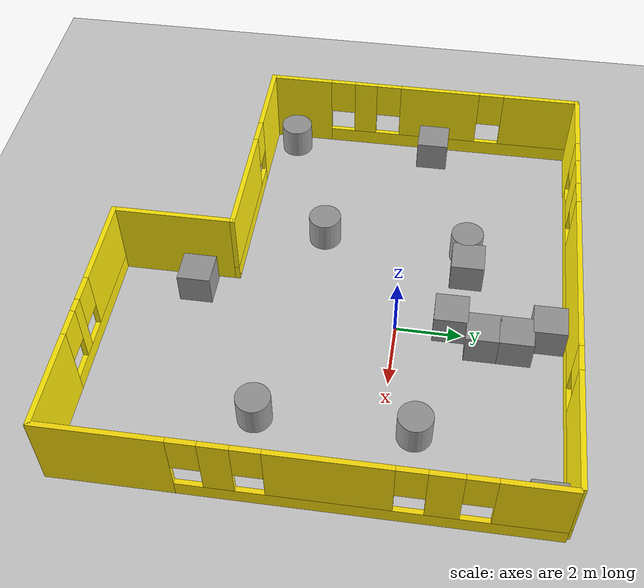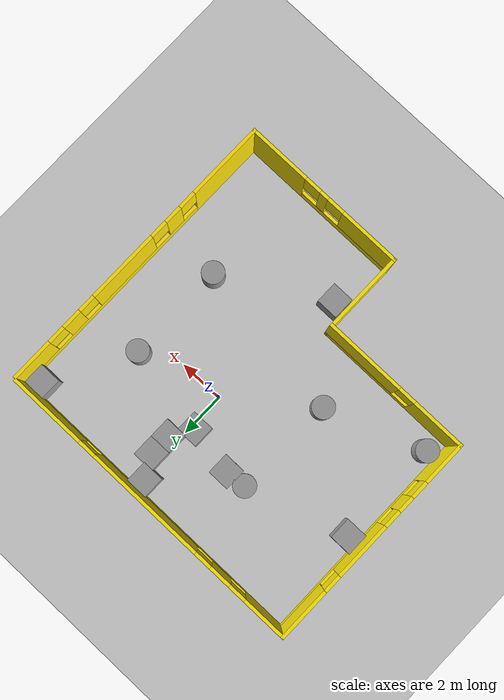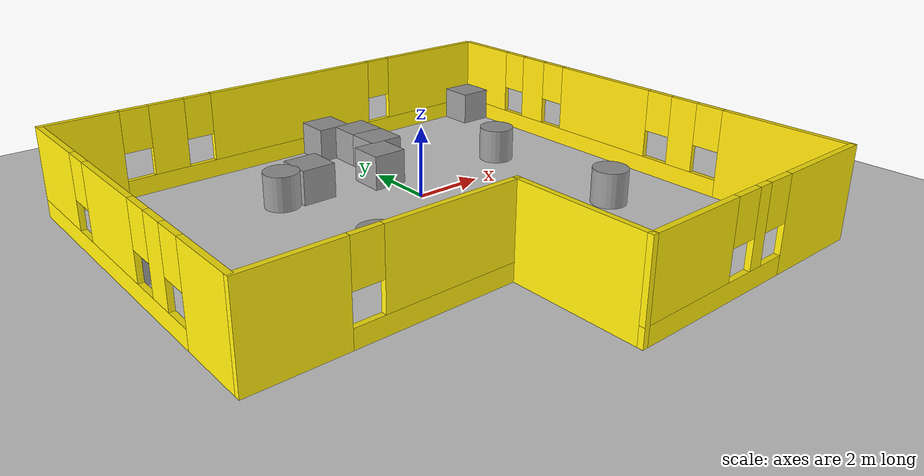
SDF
<sdf version="1.7">
 <world name="default">
  <light name="sun" type="directional">
   <pose>0 0 10 0 -0 0</pose>
   <diffuse>0.8 0.8 0.8 1</diffuse>
   <specular>0.2 0.2 0.2 1</specular>
   <attenuation>
    <range>1000</range>
    <constant>0.9</constant>
    <linear>0.01</linear>
    <quadratic>0.001</quadratic>
   </attenuation>
   <direction>-0.5 0.1 -0.9</direction>
   <spot><inner_angle>0</inner_angle><outer_angle>0</outer_angle><falloff>0</falloff></spot>
  </light>
  <model name="ground_plane">
   <static>1</static>
   <link name="link">
    <collision name="collision">
     <geometry><plane><normal>0 0 1</normal><size>100 100</size></plane></geometry>
     <surface>
      <contact><collide_bitmask>65535</collide_bitmask></contact>
      <friction><ode><mu>100</mu><mu2>50</mu2></ode></friction>
     </surface>
    </collision>
    <visual name="visual">
     <cast_shadows>0</cast_shadows>
     <geometry><plane><normal>0 0 1</normal><size>100 100</size></plane></geometry>
     <material>
      <script><uri>file://media/materials/scripts/gazebo.material</uri><name>Gazebo/Grey</name></script>
     </material>
    </visual>
   </link>
  </model>
  <gravity>0 0 -9.8</gravity>
  <magnetic_field>6e-06 2.3e-05 -4.2e-05</magnetic_field>
  <atmosphere type="adiabatic"/>
  <physics type="ode">
   <max_step_size>0.001</max_step_size>
   <real_time_factor>1</real_time_factor>
   <real_time_update_rate>1000</real_time_update_rate>
  </physics>
  <scene><ambient>0.4 0.4 0.4 1</ambient><background>0.7 0.7 0.7 1</background><shadows>1</shadows></scene>
  <audio><device>default</device></audio>
  <spherical_coordinates>
   <surface_model>EARTH_WGS84</surface_model>
   <latitude_deg>0</latitude_deg>
   <longitude_deg>0</longitude_deg>
   <elevation>0</elevation>
   <heading_deg>0</heading_deg>
  </spherical_coordinates>
  <model name="room">
   <pose>-1.03252 -1.80025 0 0 -0 0</pose>
   <link name="Wall_14">
    <pose>3.425 -6.85 0 0 -0 3.14159</pose>
    <visual name="Wall_14_Visual_0">
     <pose>-2.42261 0 1.25 0 -0 0</pose>
     <geometry><box><size>2.90478 0.15 2.5</size></box></geometry>
     <material>
      <script><uri>file://media/materials/scripts/gazebo.material</uri><name>Gazebo/Grey</name></script>
      <ambient>1 0.917647 0.027451 1</ambient>
     </material>
     <meta><layer>0</layer></meta>
    </visual>
    <collision name="Wall_14_Collision_0">
     <geometry><box><size>2.90478 0.15 2.5</size></box></geometry>
     <pose>-2.42261 0 1.25 0 -0 0</pose>
    </collision>
    <visual name="Wall_14_Visual_1">
     <pose>1.45239 0 0.25 0 -0 0</pose>
     <geometry><box><size>4.84522 0.15 0.5</size></box></geometry>
     <material>
      <script><uri>file://media/materials/scripts/gazebo.material</uri><name>Gazebo/Grey</name></script>
      <ambient>1 0.917647 0.027451 1</ambient>
     </material>
     <meta><layer>0</layer></meta>
    </visual>
    <collision name="Wall_14_Collision_1">
     <geometry><box><size>4.84522 0.15 0.5</size></box></geometry>
     <pose>1.45239 0 0.25 0 -0 0</pose>
    </collision>
    <visual name="Wall_14_Visual_2">
     <pose>0.038129 0 1.5 0 -0 0</pose>
     <geometry><box><size>0.4167 0.15 2</size></box></geometry>
     <material>
      <script><uri>file://media/materials/scripts/gazebo.material</uri><name>Gazebo/Grey</name></script>
      <ambient>1 0.917647 0.027451 1</ambient>
     </material>
     <meta><layer>0</layer></meta>
    </visual>
    <collision name="Wall_14_Collision_2">
     <geometry><box><size>0.4167 0.15 2</size></box></geometry>
     <pose>0.038129 0 1.5 0 -0 0</pose>
    </collision>
    <visual name="Wall_14_Visual_3">
     <pose>2.46074 0 1.5 0 -0 0</pose>
     <geometry><box><size>2.82852 0.15 2</size></box></geometry>
     <material>
      <script><uri>file://media/materials/scripts/gazebo.material</uri><name>Gazebo/Grey</name></script>
      <ambient>1 0.917647 0.027451 1</ambient>
     </material>
     <meta><layer>0</layer></meta>
    </visual>
    <collision name="Wall_14_Collision_3">
     <geometry><box><size>2.82852 0.15 2</size></box></geometry>
     <pose>2.46074 0 1.5 0 -0 0</pose>
    </collision>
    <visual name="Wall_14_Visual_4">
     <pose>-0.570221 0 1.9 0 -0 0</pose>
     <geometry><box><size>0.8 0.15 1.2</size></box></geometry>
     <material>
      <script><uri>file://media/materials/scripts/gazebo.material</uri><name>Gazebo/Grey</name></script>
      <ambient>1 0.917647 0.027451 1</ambient>
     </material>
     <meta><layer>0</layer></meta>
    </visual>
    <collision name="Wall_14_Collision_4">
     <geometry><box><size>0.8 0.15 1.2</size></box></geometry>
     <pose>-0.570221 0 1.9 0 -0 0</pose>
    </collision>
    <visual name="Wall_14_Visual_5">
     <pose>0.646479 0 1.9 0 -0 0</pose>
     <geometry><box><size>0.8 0.15 1.2</size></box></geometry>
     <material>
      <script><uri>file://media/materials/scripts/gazebo.material</uri><name>Gazebo/Grey</name></script>
      <ambient>1 0.917647 0.027451 1</ambient>
     </material>
     <meta><layer>0</layer></meta>
    </visual>
    <collision name="Wall_14_Collision_5">
     <geometry><box><size>0.8 0.15 1.2</size></box></geometry>
     <pose>0.646479 0 1.9 0 -0 0</pose>
    </collision>
   </link>
   <link name="Wall_15">
    <collision name="Wall_15_Collision">
     <geometry><box><size>3.75 0.15 2.5</size></box></geometry>
     <pose>0 0 1.25 0 -0 0</pose>
    </collision>
    <visual name="Wall_15_Visual">
     <pose>0 0 1.25 0 -0 0</pose>
     <geometry><box><size>3.75 0.15 2.5</size></box></geometry>
     <material>
      <script><uri>file://media/materials/scripts/gazebo.material</uri><name>Gazebo/Grey</name></script>
      <ambient>1 0.917647 0.027451 1</ambient>
     </material>
     <meta><layer>0</layer></meta>
    </visual>
    <pose>-0.375 -5.05 0 0 -0 1.5708</pose>
   </link>
   <link name="Wall_17">
    <pose>-7.225 1.8 0 0 -0 1.5708</pose>
    <visual name="Wall_17_Visual_0">
     <pose>-4.10475 0 1.25 0 -0 0</pose>
     <geometry><box><size>2.04049 0.15 2.5</size></box></geometry>
     <material>
      <script><uri>file://media/materials/scripts/gazebo.material</uri><name>Gazebo/Grey</name></script>
      <ambient>1 0.917647 0.027451 1</ambient>
     </material>
     <meta><layer>0</layer></meta>
    </visual>
    <collision name="Wall_17_Collision_0">
     <geometry><box><size>2.04049 0.15 2.5</size></box></geometry>
     <pose>-4.10475 0 1.25 0 -0 0</pose>
    </collision>
    <visual name="Wall_17_Visual_1">
     <pose>1.02025 0 0.25 0 -0 0</pose>
     <geometry><box><size>8.20951 0.15 0.5</size></box></geometry>
     <material>
      <script><uri>file://media/materials/scripts/gazebo.material</uri><name>Gazebo/Grey</name></script>
      <ambient>1 0.917647 0.027451 1</ambient>
     </material>
     <meta><layer>0</layer></meta>
    </visual>
    <collision name="Wall_17_Collision_1">
     <geometry><box><size>8.20951 0.15 0.5</size></box></geometry>
     <pose>1.02025 0 0.25 0 -0 0</pose>
    </collision>
    <visual name="Wall_17_Visual_2">
     <pose>-1.91393 0 1.5 0 -0 0</pose>
     <geometry><box><size>0.741153 0.15 2</size></box></geometry>
     <material>
      <script><uri>file://media/materials/scripts/gazebo.material</uri><name>Gazebo/Grey</name></script>
      <ambient>1 0.917647 0.027451 1</ambient>
     </material>
     <meta><layer>0</layer></meta>
    </visual>
    <collision name="Wall_17_Collision_2">
     <geometry><box><size>0.741153 0.15 2</size></box></geometry>
     <pose>-1.91393 0 1.5 0 -0 0</pose>
    </collision>
    <visual name="Wall_17_Visual_3">
     <pose>0.560023 0 1.5 0 -0 0</pose>
     <geometry><box><size>2.60676 0.15 2</size></box></geometry>
     <material>
      <script><uri>file://media/materials/scripts/gazebo.material</uri><name>Gazebo/Grey</name></script>
      <ambient>1 0.917647 0.027451 1</ambient>
     </material>
     <meta><layer>0</layer></meta>
    </visual>
    <collision name="Wall_17_Collision_3">
     <geometry><box><size>2.60676 0.15 2</size></box></geometry>
     <pose>0.560023 0 1.5 0 -0 0</pose>
    </collision>
    <visual name="Wall_17_Visual_4">
     <pose>3.8942 0 1.5 0 -0 0</pose>
     <geometry><box><size>2.4616 0.15 2</size></box></geometry>
     <material>
      <script><uri>file://media/materials/scripts/gazebo.material</uri><name>Gazebo/Grey</name></script>
      <ambient>1 0.917647 0.027451 1</ambient>
     </material>
     <meta><layer>0</layer></meta>
    </visual>
    <collision name="Wall_17_Collision_4">
     <geometry><box><size>2.4616 0.15 2</size></box></geometry>
     <pose>3.8942 0 1.5 0 -0 0</pose>
    </collision>
    <visual name="Wall_17_Visual_5">
     <pose>-2.68451 0 1.9 0 -0 0</pose>
     <geometry><box><size>0.8 0.15 1.2</size></box></geometry>
     <material>
      <script><uri>file://media/materials/scripts/gazebo.material</uri><name>Gazebo/Grey</name></script>
      <ambient>1 0.917647 0.027451 1</ambient>
     </material>
     <meta><layer>0</layer></meta>
    </visual>
    <collision name="Wall_17_Collision_5">
     <geometry><box><size>0.8 0.15 1.2</size></box></geometry>
     <pose>-2.68451 0 1.9 0 -0 0</pose>
    </collision>
    <visual name="Wall_17_Visual_6">
     <pose>-1.14336 0 1.9 0 -0 0</pose>
     <geometry><box><size>0.8 0.15 1.2</size></box></geometry>
     <material>
      <script><uri>file://media/materials/scripts/gazebo.material</uri><name>Gazebo/Grey</name></script>
      <ambient>1 0.917647 0.027451 1</ambient>
     </material>
     <meta><layer>0</layer></meta>
    </visual>
    <collision name="Wall_17_Collision_6">
     <geometry><box><size>0.8 0.15 1.2</size></box></geometry>
     <pose>-1.14336 0 1.9 0 -0 0</pose>
    </collision>
    <visual name="Wall_17_Visual_7">
     <pose>2.2634 0 1.9 0 -0 0</pose>
     <geometry><box><size>0.8 0.15 1.2</size></box></geometry>
     <material>
      <script><uri>file://media/materials/scripts/gazebo.material</uri><name>Gazebo/Grey</name></script>
      <ambient>1 0.917647 0.027451 1</ambient>
     </material>
     <meta><layer>0</layer></meta>
    </visual>
    <collision name="Wall_17_Collision_7">
     <geometry><box><size>0.8 0.15 1.2</size></box></geometry>
     <pose>2.2634 0 1.9 0 -0 0</pose>
    </collision>
   </link>
   <link name="Wall_19">
    <pose>-0.05 6.85 0 0 -0 0</pose>
    <visual name="Wall_19_Visual_0">
     <pose>-6.20279 0 1.25 0 -0 0</pose>
     <geometry><box><size>2.09442 0.15 2.5</size></box></geometry>
     <material>
      <script><uri>file://media/materials/scripts/gazebo.material</uri><name>Gazebo/Grey</name></script>
      <ambient>1 0.917647 0.027451 1</ambient>
     </material>
     <meta><layer>0</layer></meta>
    </visual>
    <collision name="Wall_19_Collision_0">
     <geometry><box><size>2.09442 0.15 2.5</size></box></geometry>
     <pose>-6.20279 0 1.25 0 -0 0</pose>
    </collision>
    <visual name="Wall_19_Visual_1">
     <pose>1.04721 0 0.25 0 -0 0</pose>
     <geometry><box><size>12.4056 0.15 0.5</size></box></geometry>
     <material>
      <script><uri>file://media/materials/scripts/gazebo.material</uri><name>Gazebo/Grey</name></script>
      <ambient>1 0.917647 0.027451 1</ambient>
     </material>
     <meta><layer>0</layer></meta>
    </visual>
    <collision name="Wall_19_Collision_1">
     <geometry><box><size>12.4056 0.15 0.5</size></box></geometry>
     <pose>1.04721 0 0.25 0 -0 0</pose>
    </collision>
    <visual name="Wall_19_Visual_2">
     <pose>-3.84305 0 1.5 0 -0 0</pose>
     <geometry><box><size>1.02505 0.15 2</size></box></geometry>
     <material>
      <script><uri>file://media/materials/scripts/gazebo.material</uri><name>Gazebo/Grey</name></script>
      <ambient>1 0.917647 0.027451 1</ambient>
     </material>
     <meta><layer>0</layer></meta>
    </visual>
    <collision name="Wall_19_Collision_2">
     <geometry><box><size>1.02505 0.15 2</size></box></geometry>
     <pose>-3.84305 0 1.5 0 -0 0</pose>
    </collision>
    <visual name="Wall_19_Visual_3">
     <pose>0.192337 0 1.5 0 -0 0</pose>
     <geometry><box><size>5.44573 0.15 2</size></box></geometry>
     <material>
      <script><uri>file://media/materials/scripts/gazebo.material</uri><name>Gazebo/Grey</name></script>
      <ambient>1 0.917647 0.027451 1</ambient>
     </material>
     <meta><layer>0</layer></meta>
    </visual>
    <collision name="Wall_19_Collision_3">
     <geometry><box><size>5.44573 0.15 2</size></box></geometry>
     <pose>0.192337 0 1.5 0 -0 0</pose>
    </collision>
    <visual name="Wall_19_Visual_4">
     <pose>5.4826 0 1.5 0 -0 0</pose>
     <geometry><box><size>3.5348 0.15 2</size></box></geometry>
     <material>
      <script><uri>file://media/materials/scripts/gazebo.material</uri><name>Gazebo/Grey</name></script>
      <ambient>1 0.917647 0.027451 1</ambient>
     </material>
     <meta><layer>0</layer></meta>
    </visual>
    <collision name="Wall_19_Collision_4">
     <geometry><box><size>3.5348 0.15 2</size></box></geometry>
     <pose>5.4826 0 1.5 0 -0 0</pose>
    </collision>
    <visual name="Wall_19_Visual_5">
     <pose>-4.75558 0 1.9 0 -0 0</pose>
     <geometry><box><size>0.8 0.15 1.2</size></box></geometry>
     <material>
      <script><uri>file://media/materials/scripts/gazebo.material</uri><name>Gazebo/Grey</name></script>
      <ambient>1 0.917647 0.027451 1</ambient>
     </material>
     <meta><layer>0</layer></meta>
    </visual>
    <collision name="Wall_19_Collision_5">
     <geometry><box><size>0.8 0.15 1.2</size></box></geometry>
     <pose>-4.75558 0 1.9 0 -0 0</pose>
    </collision>
    <visual name="Wall_19_Visual_6">
     <pose>-2.93053 0 1.9 0 -0 0</pose>
     <geometry><box><size>0.8 0.15 1.2</size></box></geometry>
     <material>
      <script><uri>file://media/materials/scripts/gazebo.material</uri><name>Gazebo/Grey</name></script>
      <ambient>1 0.917647 0.027451 1</ambient>
     </material>
     <meta><layer>0</layer></meta>
    </visual>
    <collision name="Wall_19_Collision_6">
     <geometry><box><size>0.8 0.15 1.2</size></box></geometry>
     <pose>-2.93053 0 1.9 0 -0 0</pose>
    </collision>
    <visual name="Wall_19_Visual_7">
     <pose>3.3152 0 1.9 0 -0 0</pose>
     <geometry><box><size>0.8 0.15 1.2</size></box></geometry>
     <material>
      <script><uri>file://media/materials/scripts/gazebo.material</uri><name>Gazebo/Grey</name></script>
      <ambient>1 0.917647 0.027451 1</ambient>
     </material>
     <meta><layer>0</layer></meta>
    </visual>
    <collision name="Wall_19_Collision_7">
     <geometry><box><size>0.8 0.15 1.2</size></box></geometry>
     <pose>3.3152 0 1.9 0 -0 0</pose>
    </collision>
   </link>
   <link name="Wall_23">
    <pose>7.225 -0.049999 0 0 -0 1.5708</pose>
    <visual name="Wall_23_Visual_0">
     <pose>-5.08895 0 1.25 0 -0 0</pose>
     <geometry><box><size>3.5721 0.15 2.5</size></box></geometry>
     <material>
      <script><uri>file://media/materials/scripts/gazebo.material</uri><name>Gazebo/Grey</name></script>
      <ambient>1 0.886275 0.0313726 1</ambient>
     </material>
     <meta><layer>0</layer></meta>
    </visual>
    <collision name="Wall_23_Collision_0">
     <geometry><box><size>3.5721 0.15 2.5</size></box></geometry>
     <pose>-5.08895 0 1.25 0 -0 0</pose>
    </collision>
    <visual name="Wall_23_Visual_1">
     <pose>1.78605 0 0.25 0 -0 0</pose>
     <geometry><box><size>10.1779 0.15 0.5</size></box></geometry>
     <material>
      <script><uri>file://media/materials/scripts/gazebo.material</uri><name>Gazebo/Grey</name></script>
      <ambient>1 0.886275 0.0313726 1</ambient>
     </material>
     <meta><layer>0</layer></meta>
    </visual>
    <collision name="Wall_23_Collision_1">
     <geometry><box><size>10.1779 0.15 0.5</size></box></geometry>
     <pose>1.78605 0 0.25 0 -0 0</pose>
    </collision>
    <visual name="Wall_23_Visual_2">
     <pose>-2.09177 0 1.5 0 -0 0</pose>
     <geometry><box><size>0.822267 0.15 2</size></box></geometry>
     <material>
      <script><uri>file://media/materials/scripts/gazebo.material</uri><name>Gazebo/Grey</name></script>
      <ambient>1 0.886275 0.0313726 1</ambient>
     </material>
     <meta><layer>0</layer></meta>
    </visual>
    <collision name="Wall_23_Collision_2">
     <geometry><box><size>0.822267 0.15 2</size></box></geometry>
     <pose>-2.09177 0 1.5 0 -0 0</pose>
    </collision>
    <visual name="Wall_23_Visual_3">
     <pose>0.767478 0 1.5 0 -0 0</pose>
     <geometry><box><size>3.29622 0.15 2</size></box></geometry>
     <material>
      <script><uri>file://media/materials/scripts/gazebo.material</uri><name>Gazebo/Grey</name></script>
      <ambient>1 0.886275 0.0313726 1</ambient>
     </material>
     <meta><layer>0</layer></meta>
    </visual>
    <collision name="Wall_23_Collision_3">
     <geometry><box><size>3.29622 0.15 2</size></box></geometry>
     <pose>0.767478 0 1.5 0 -0 0</pose>
    </collision>
    <visual name="Wall_23_Visual_4">
     <pose>3.66728 0 1.5 0 -0 0</pose>
     <geometry><box><size>0.90338 0.15 2</size></box></geometry>
     <material>
      <script><uri>file://media/materials/scripts/gazebo.material</uri><name>Gazebo/Grey</name></script>
      <ambient>1 0.886275 0.0313726 1</ambient>
     </material>
     <meta><layer>0</layer></meta>
    </visual>
    <collision name="Wall_23_Collision_4">
     <geometry><box><size>0.90338 0.15 2</size></box></geometry>
     <pose>3.66728 0 1.5 0 -0 0</pose>
    </collision>
    <visual name="Wall_23_Visual_5">
     <pose>5.89698 0 1.5 0 -0 0</pose>
     <geometry><box><size>1.95603 0.15 2</size></box></geometry>
     <material>
      <script><uri>file://media/materials/scripts/gazebo.material</uri><name>Gazebo/Grey</name></script>
      <ambient>1 0.886275 0.0313726 1</ambient>
     </material>
     <meta><layer>0</layer></meta>
    </visual>
    <collision name="Wall_23_Collision_5">
     <geometry><box><size>1.95603 0.15 2</size></box></geometry>
     <pose>5.89698 0 1.5 0 -0 0</pose>
    </collision>
    <visual name="Wall_23_Visual_6">
     <pose>-2.9029 0 1.9 0 -0 0</pose>
     <geometry><box><size>0.8 0.15 1.2</size></box></geometry>
     <material>
      <script><uri>file://media/materials/scripts/gazebo.material</uri><name>Gazebo/Grey</name></script>
      <ambient>1 0.886275 0.0313726 1</ambient>
     </material>
     <meta><layer>0</layer></meta>
    </visual>
    <collision name="Wall_23_Collision_6">
     <geometry><box><size>0.8 0.15 1.2</size></box></geometry>
     <pose>-2.9029 0 1.9 0 -0 0</pose>
    </collision>
    <visual name="Wall_23_Visual_7">
     <pose>-1.28063 0 1.9 0 -0 0</pose>
     <geometry><box><size>0.8 0.15 1.2</size></box></geometry>
     <material>
      <script><uri>file://media/materials/scripts/gazebo.material</uri><name>Gazebo/Grey</name></script>
      <ambient>1 0.886275 0.0313726 1</ambient>
     </material>
     <meta><layer>0</layer></meta>
    </visual>
    <collision name="Wall_23_Collision_7">
     <geometry><box><size>0.8 0.15 1.2</size></box></geometry>
     <pose>-1.28063 0 1.9 0 -0 0</pose>
    </collision>
    <visual name="Wall_23_Visual_8">
     <pose>2.81559 0 1.9 0 -0 0</pose>
     <geometry><box><size>0.8 0.15 1.2</size></box></geometry>
     <material>
      <script><uri>file://media/materials/scripts/gazebo.material</uri><name>Gazebo/Grey</name></script>
      <ambient>1 0.886275 0.0313726 1</ambient>
     </material>
     <meta><layer>0</layer></meta>
    </visual>
    <collision name="Wall_23_Collision_8">
     <geometry><box><size>0.8 0.15 1.2</size></box></geometry>
     <pose>2.81559 0 1.9 0 -0 0</pose>
    </collision>
    <visual name="Wall_23_Visual_9">
     <pose>4.51897 0 1.9 0 -0 0</pose>
     <geometry><box><size>0.8 0.15 1.2</size></box></geometry>
     <material>
      <script><uri>file://media/materials/scripts/gazebo.material</uri><name>Gazebo/Grey</name></script>
      <ambient>1 0.886275 0.0313726 1</ambient>
     </material>
     <meta><layer>0</layer></meta>
    </visual>
    <collision name="Wall_23_Collision_9">
     <geometry><box><size>0.8 0.15 1.2</size></box></geometry>
     <pose>4.51897 0 1.9 0 -0 0</pose>
    </collision>
   </link>
   <link name="Wall_27">
    <pose>-3.8 -3.25 0 0 -0 0</pose>
    <visual name="Wall_27_Visual_0">
     <pose>-2.25 0 1.25 0 -0 0</pose>
     <geometry><box><size>2.49999 0.15 2.5</size></box></geometry>
     <material>
      <script><uri>file://media/materials/scripts/gazebo.material</uri><name>Gazebo/Grey</name></script>
      <ambient>1 0.921569 0.0431373 1</ambient>
     </material>
     <meta><layer>0</layer></meta>
    </visual>
    <collision name="Wall_27_Collision_0">
     <geometry><box><size>2.49999 0.15 2.5</size></box></geometry>
     <pose>-2.25 0 1.25 0 -0 0</pose>
    </collision>
    <visual name="Wall_27_Visual_1">
     <pose>1.25 0 0.25 0 -0 0</pose>
     <geometry><box><size>4.50001 0.15 0.5</size></box></geometry>
     <material>
      <script><uri>file://media/materials/scripts/gazebo.material</uri><name>Gazebo/Grey</name></script>
      <ambient>1 0.921569 0.0431373 1</ambient>
     </material>
     <meta><layer>0</layer></meta>
    </visual>
    <collision name="Wall_27_Collision_1">
     <geometry><box><size>4.50001 0.15 0.5</size></box></geometry>
     <pose>1.25 0 0.25 0 -0 0</pose>
    </collision>
    <visual name="Wall_27_Visual_2">
     <pose>1.65 0 1.5 0 -0 0</pose>
     <geometry><box><size>3.70001 0.15 2</size></box></geometry>
     <material>
      <script><uri>file://media/materials/scripts/gazebo.material</uri><name>Gazebo/Grey</name></script>
      <ambient>1 0.921569 0.0431373 1</ambient>
     </material>
     <meta><layer>0</layer></meta>
    </visual>
    <collision name="Wall_27_Collision_2">
     <geometry><box><size>3.70001 0.15 2</size></box></geometry>
     <pose>1.65 0 1.5 0 -0 0</pose>
    </collision>
    <visual name="Wall_27_Visual_3">
     <pose>-0.600009 0 1.9 0 -0 0</pose>
     <geometry><box><size>0.8 0.15 1.2</size></box></geometry>
     <material>
      <script><uri>file://media/materials/scripts/gazebo.material</uri><name>Gazebo/Grey</name></script>
      <ambient>1 0.921569 0.0431373 1</ambient>
     </material>
     <meta><layer>0</layer></meta>
    </visual>
    <collision name="Wall_27_Collision_3">
     <geometry><box><size>0.8 0.15 1.2</size></box></geometry>
     <pose>-0.600009 0 1.9 0 -0 0</pose>
    </collision>
   </link>
   <static>1</static>
  </model>
  <model name="unit_box">
   <pose>5.63445 4.49394 0.5 0 -0 0</pose>
   <link name="link">
    <inertial>
     <mass>1</mass>
     <inertia>
      <ixx>0.166667</ixx>
      <ixy>0</ixy>
      <ixz>0</ixz>
      <iyy>0.166667</iyy>
      <iyz>0</iyz>
      <izz>0.166667</izz>
     </inertia>
    </inertial>
    <collision name="collision"><geometry><box><size>1 1 1</size></box></geometry></collision>
    <visual name="visual">
     <geometry><box><size>1 1 1</size></box></geometry>
     <material>
      <script><name>Gazebo/Grey</name><uri>file://media/materials/scripts/gazebo.material</uri></script>
     </material>
    </visual>
   </link>
  </model>
  <model name="unit_cylinder">
   <pose>3.66665 -3.54119 0.5 0 -0 0</pose>
   <link name="link">
    <inertial>
     <mass>1</mass>
     <inertia><ixx>0.145833</ixx><ixy>0</ixy><ixz>0</ixz><iyy>0.145833</iyy><iyz>0</iyz><izz>0.125</izz></inertia>
    </inertial>
    <collision name="collision">
     <geometry><cylinder><radius>0.5</radius><length>1</length></cylinder></geometry>
    </collision>
    <visual name="visual">
     <geometry><cylinder><radius>0.5</radius><length>1</length></cylinder></geometry>
     <material>
      <script><name>Gazebo/Grey</name><uri>file://media/materials/scripts/gazebo.material</uri></script>
     </material>
    </visual>
   </link>
  </model>
  <model name="unit_cylinder_0">
   <pose>3.66665 0.907837 0.5 0 -0 0</pose>
   <link name="link">
    <inertial>
     <mass>1</mass>
     <inertia><ixx>0.145833</ixx><ixy>0</ixy><ixz>0</ixz><iyy>0.145833</iyy><iyz>0</iyz><izz>0.125</izz></inertia>
    </inertial>
    <collision name="collision">
     <geometry><cylinder><radius>0.5</radius><length>1</length></cylinder></geometry>
    </collision>
    <visual name="visual">
     <geometry><cylinder><radius>0.5</radius><length>1</length></cylinder></geometry>
     <material>
      <script><name>Gazebo/Grey</name><uri>file://media/materials/scripts/gazebo.material</uri></script>
     </material>
    </visual>
   </link>
  </model>
  <model name="unit_cylinder_1">
   <pose>-3.26023 1.89352 0.5 0 -0 0</pose>
   <link name="link">
    <inertial>
     <mass>1</mass>
     <inertia><ixx>0.145833</ixx><ixy>0</ixy><ixz>0</ixz><iyy>0.145833</iyy><iyz>0</iyz><izz>0.125</izz></inertia>
    </inertial>
    <collision name="collision">
     <geometry><cylinder><radius>0.5</radius><length>1</length></cylinder></geometry>
    </collision>
    <visual name="visual">
     <geometry><cylinder><radius>0.5</radius><length>1</length></cylinder></geometry>
     <material>
      <script><name>Gazebo/Grey</name><uri>file://media/materials/scripts/gazebo.material</uri></script>
     </material>
    </visual>
   </link>
  </model>
  <model name="unit_cylinder_2">
   <pose>-3.40096 -2.61158 0.5 0 -0 0</pose>
   <link name="link">
    <inertial>
     <mass>1</mass>
     <inertia><ixx>0.145833</ixx><ixy>0</ixy><ixz>0</ixz><iyy>0.145833</iyy><iyz>0</iyz><izz>0.125</izz></inertia>
    </inertial>
    <collision name="collision">
     <geometry><cylinder><radius>0.5</radius><length>1</length></cylinder></geometry>
    </collision>
    <visual name="visual">
     <geometry><cylinder><radius>0.5</radius><length>1</length></cylinder></geometry>
     <material>
      <script><name>Gazebo/Grey</name><uri>file://media/materials/scripts/gazebo.material</uri></script>
     </material>
    </visual>
   </link>
  </model>
  <model name="unit_box_0">
   <pose>-2.3309 1.97762 0.5 0 -0 0</pose>
   <link name="link">
    <inertial>
     <mass>1</mass>
     <inertia>
      <ixx>0.166667</ixx>
      <ixy>0</ixy>
      <ixz>0</ixz>
      <iyy>0.166667</iyy>
      <iyz>0</iyz>
      <izz>0.166667</izz>
     </inertia>
    </inertial>
    <collision name="collision"><geometry><box><size>1 1 1</size></box></geometry></collision>
    <visual name="visual">
     <geometry><box><size>1 1 1</size></box></geometry>
     <material>
      <script><name>Gazebo/Grey</name><uri>file://media/materials/scripts/gazebo.material</uri></script>
     </material>
    </visual>
   </link>
  </model>
  <model name="unit_box_1">
   <pose>-0.162826 4.48407 0.5 0 -0 0</pose>
   <link name="link">
    <inertial>
     <mass>1</mass>
     <inertia>
      <ixx>0.166667</ixx>
      <ixy>0</ixy>
      <ixz>0</ixz>
      <iyy>0.166667</iyy>
      <iyz>0</iyz>
      <izz>0.166667</izz>
     </inertia>
    </inertial>
    <collision name="collision"><geometry><box><size>1 1 1</size></box></geometry></collision>
    <visual name="visual">
     <geometry><box><size>1 1 1</size></box></geometry>
     <material>
      <script><name>Gazebo/Grey</name><uri>file://media/materials/scripts/gazebo.material</uri></script>
     </material>
    </visual>
   </link>
  </model>
  <model name="unit_box_2">
   <pose>0.372254 3.52679 0.5 0 -0 0</pose>
   <link name="link">
    <inertial>
     <mass>1</mass>
     <inertia>
      <ixx>0.166667</ixx>
      <ixy>0</ixy>
      <ixz>0</ixz>
      <iyy>0.166667</iyy>
      <iyz>0</iyz>
      <izz>0.166667</izz>
     </inertia>
    </inertial>
    <collision name="collision"><geometry><box><size>1 1 1</size></box></geometry></collision>
    <visual name="visual">
     <geometry><box><size>1 1 1</size></box></geometry>
     <material>
      <script><name>Gazebo/Grey</name><uri>file://media/materials/scripts/gazebo.material</uri></script>
     </material>
    </visual>
   </link>
  </model>
  <model name="unit_box_3">
   <pose>0.372254 2.56914 0.5 0 -0 0</pose>
   <link name="link">
    <inertial>
     <mass>1</mass>
     <inertia>
      <ixx>0.166667</ixx>
      <ixy>0</ixy>
      <ixz>0</ixz>
      <iyy>0.166667</iyy>
      <iyz>0</iyz>
      <izz>0.166667</izz>
     </inertia>
    </inertial>
    <collision name="collision"><geometry><box><size>1 1 1</size></box></geometry></collision>
    <visual name="visual">
     <geometry><box><size>1 1 1</size></box></geometry>
     <material>
      <script><name>Gazebo/Grey</name><uri>file://media/materials/scripts/gazebo.material</uri></script>
     </material>
    </visual>
   </link>
  </model>
  <model name="unit_box_4">
   <pose>-0.219175 1.61168 0.5 0 -0 0</pose>
   <link name="link">
    <inertial>
     <mass>1</mass>
     <inertia>
      <ixx>0.166667</ixx>
      <ixy>0</ixy>
      <ixz>0</ixz>
      <iyy>0.166667</iyy>
      <iyz>0</iyz>
      <izz>0.166667</izz>
     </inertia>
    </inertial>
    <collision name="collision"><geometry><box><size>1 1 1</size></box></geometry></collision>
    <visual name="visual">
     <geometry><box><size>1 1 1</size></box></geometry>
     <material>
      <script><name>Gazebo/Grey</name><uri>file://media/materials/scripts/gazebo.material</uri></script>
     </material>
    </visual>
   </link>
  </model>
  <model name="unit_box_5">
   <pose>-7.68086 0.485455 0.5 0 -0 0</pose>
   <link name="link">
    <inertial>
     <mass>1</mass>
     <inertia>
      <ixx>0.166667</ixx>
      <ixy>0</ixy>
      <ixz>0</ixz>
      <iyy>0.166667</iyy>
      <iyz>0</iyz>
      <izz>0.166667</izz>
     </inertia>
    </inertial>
    <collision name="collision"><geometry><box><size>1 1 1</size></box></geometry></collision>
    <visual name="visual">
     <geometry><box><size>1 1 1</size></box></geometry>
     <material>
      <script><name>Gazebo/Grey</name><uri>file://media/materials/scripts/gazebo.material</uri></script>
     </material>
    </visual>
   </link>
  </model>
  <model name="unit_cylinder_3">
   <pose>-7.65273 -4.21663 0.5 0 -0 0</pose>
   <link name="link">
    <inertial>
     <mass>1</mass>
     <inertia><ixx>0.145833</ixx><ixy>0</ixy><ixz>0</ixz><iyy>0.145833</iyy><iyz>0</iyz><izz>0.125</izz></inertia>
    </inertial>
    <collision name="collision">
     <geometry><cylinder><radius>0.5</radius><length>1</length></cylinder></geometry>
    </collision>
    <visual name="visual">
     <geometry><cylinder><radius>0.5</radius><length>1</length></cylinder></geometry>
     <material>
      <script><name>Gazebo/Grey</name><uri>file://media/materials/scripts/gazebo.material</uri></script>
     </material>
    </visual>
   </link>
  </model>
  <model name="unit_box_6">
   <pose>-0.754161 -6.13137 0.5 0 -0 0</pose>
   <link name="link">
    <inertial>
     <mass>1</mass>
     <inertia>
      <ixx>0.166667</ixx>
      <ixy>0</ixy>
      <ixz>0</ixz>
      <iyy>0.166667</iyy>
      <iyz>0</iyz>
      <izz>0.166667</izz>
     </inertia>
    </inertial>
    <collision name="collision"><geometry><box><size>1 1 1</size></box></geometry></collision>
    <visual name="visual">
     <geometry><box><size>1 1 1</size></box></geometry>
     <material>
      <script><name>Gazebo/Grey</name><uri>file://media/materials/scripts/gazebo.material</uri></script>
     </material>
    </visual>
   </link>
  </model>
 </world>
</sdf>
